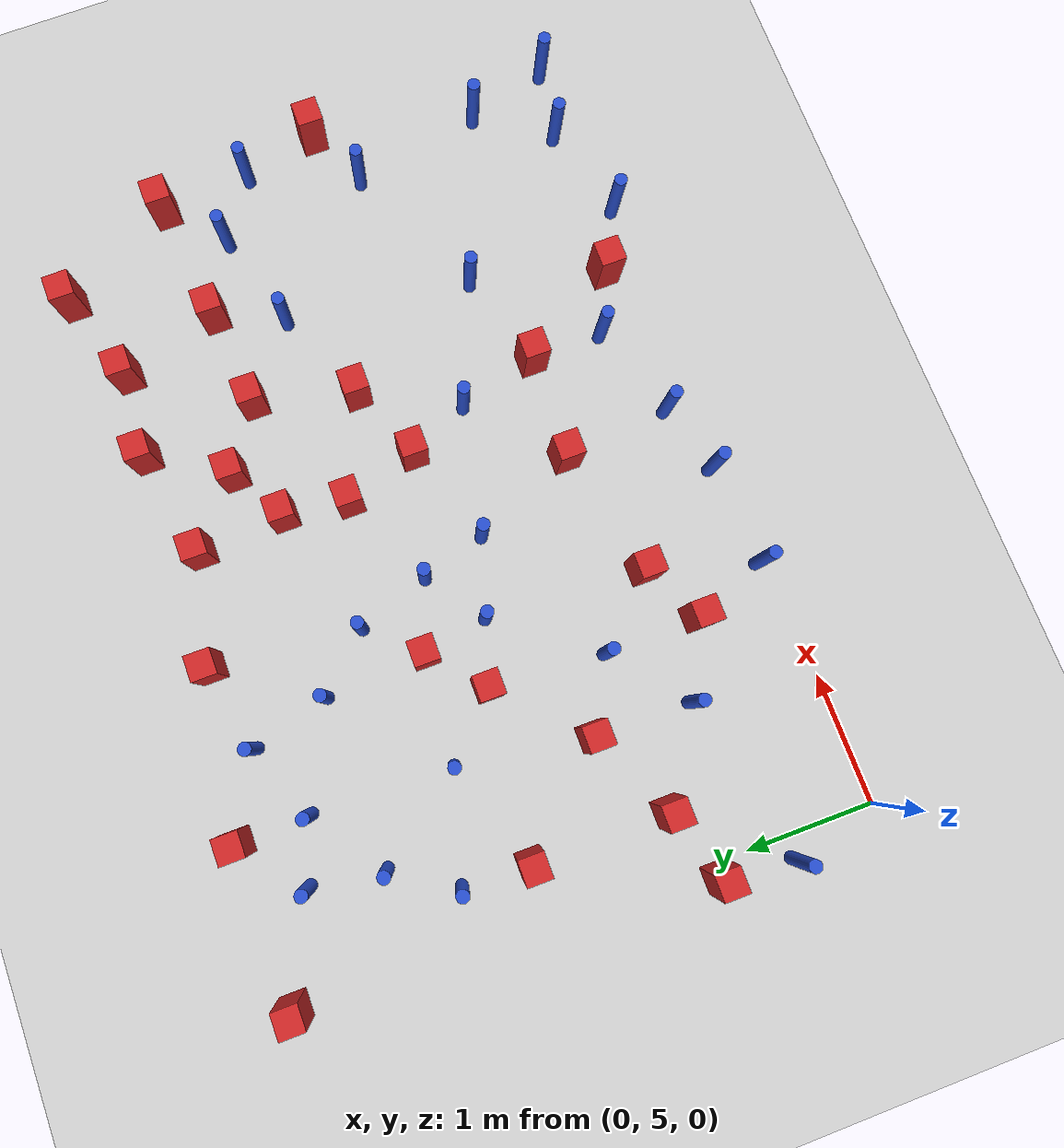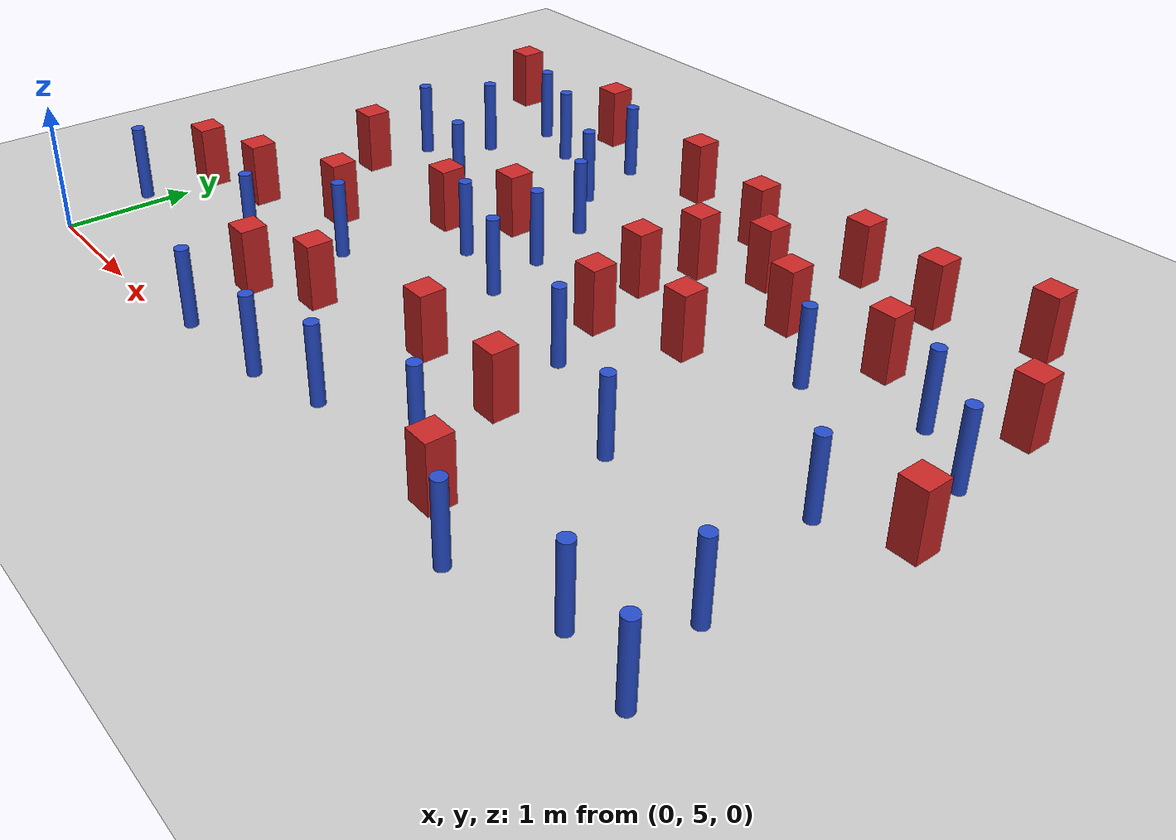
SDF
<sdf version="1.6">
 <world name="default">
  <model name="ground_plane">
   <static>1</static>
   <link name="link">
    <collision name="collision">
     <geometry><plane><normal>0 0 1</normal><size>100 100</size></plane></geometry>
     <surface><friction><ode><mu>100</mu><mu2>50</mu2></ode></friction></surface>
    </collision>
    <visual name="visual">
     <cast_shadows>0</cast_shadows>
     <geometry><plane><normal>0 0 1</normal><size>100 100</size></plane></geometry>
     <material>
      <ambient>1.0 1.0 1.0 1.0</ambient>
      <diffuse>0.8 0.8 0.8 1.0</diffuse>
      <specular>0.01 0.01 0.01 1.000000</specular>
     </material>
    </visual>
   </link>
  </model>
  <model name="pole_obstacle9">
   <static>true</static>
   <pose>2.75062196768 5.16766341242 2.88873142074e-08 -9.90536689859e-09 4.60219948989e-07 -1.20965994961e-07</pose>
   <link name="link">
    <pose>0 0 0.3 0 -0 0</pose>
    <inertial>
     <mass>1</mass>
     <inertia><ixx>0.145833</ixx><ixy>0</ixy><ixz>0</ixz><iyy>0.145833</iyy><iyz>0</iyz><izz>0.125</izz></inertia>
    </inertial>
    <collision name="collision">
     <geometry><cylinder><radius>0.05</radius><length>.6</length></cylinder></geometry>
    </collision>
    <visual name="visual">
     <geometry><cylinder><radius>0.05</radius><length>.6</length></cylinder></geometry>
     <material>
      <script><name>Gazebo/Blue</name><uri>file://media/materials/scripts/gazebo.material</uri></script>
     </material>
    </visual>
   </link>
  </model>
  <model name="pole_obstacle12">
   <static>true</static>
   <pose>6.35247733203 5.19964490263 2.88873142074e-08 -9.90536690842e-09 4.60219948965e-07 -1.20965994976e-07</pose>
   <link name="link">
    <pose>0 0 0.3 0 -0 0</pose>
    <inertial>
     <mass>1</mass>
     <inertia><ixx>0.145833</ixx><ixy>0</ixy><ixz>0</ixz><iyy>0.145833</iyy><iyz>0</iyz><izz>0.125</izz></inertia>
    </inertial>
    <collision name="collision">
     <geometry><cylinder><radius>0.05</radius><length>.6</length></cylinder></geometry>
    </collision>
    <visual name="visual">
     <geometry><cylinder><radius>0.05</radius><length>.6</length></cylinder></geometry>
     <material>
      <script><name>Gazebo/Blue</name><uri>file://media/materials/scripts/gazebo.material</uri></script>
     </material>
    </visual>
   </link>
  </model>
  <model name="pole_obstacle18">
   <static>true</static>
   <pose>0.877710790639 9.0844048404 2.88873142074e-08 -9.90536690779e-09 4.60219948967e-07 -1.20965994975e-07</pose>
   <link name="link">
    <pose>0 0 0.3 0 -0 0</pose>
    <inertial>
     <mass>1</mass>
     <inertia><ixx>0.145833</ixx><ixy>0</ixy><ixz>0</ixz><iyy>0.145833</iyy><iyz>0</iyz><izz>0.125</izz></inertia>
    </inertial>
    <collision name="collision">
     <geometry><cylinder><radius>0.05</radius><length>.6</length></cylinder></geometry>
    </collision>
    <visual name="visual">
     <geometry><cylinder><radius>0.05</radius><length>.6</length></cylinder></geometry>
     <material>
      <script><name>Gazebo/Blue</name><uri>file://media/materials/scripts/gazebo.material</uri></script>
     </material>
    </visual>
   </link>
  </model>
  <model name="pole_obstacle20">
   <static>true</static>
   <pose>0.496173714521 8.05047855768 2.88873142074e-08 -9.90536690577e-09 4.60219948971e-07 -1.20965994972e-07</pose>
   <link name="link">
    <pose>0 0 0.3 0 -0 0</pose>
    <inertial>
     <mass>1</mass>
     <inertia><ixx>0.145833</ixx><ixy>0</ixy><ixz>0</ixz><iyy>0.145833</iyy><iyz>0</iyz><izz>0.125</izz></inertia>
    </inertial>
    <collision name="collision">
     <geometry><cylinder><radius>0.05</radius><length>.6</length></cylinder></geometry>
    </collision>
    <visual name="visual">
     <geometry><cylinder><radius>0.05</radius><length>.6</length></cylinder></geometry>
     <material>
      <script><name>Gazebo/Blue</name><uri>file://media/materials/scripts/gazebo.material</uri></script>
     </material>
    </visual>
   </link>
  </model>
  <model name="pole_obstacle26">
   <static>true</static>
   <pose>2.86004743511 7.0189438137 2.88873142074e-08 -9.90536689859e-09 4.60219948989e-07 -1.20965994961e-07</pose>
   <link name="link">
    <pose>0 0 0.3 0 -0 0</pose>
    <inertial>
     <mass>1</mass>
     <inertia><ixx>0.145833</ixx><ixy>0</ixy><ixz>0</ixz><iyy>0.145833</iyy><iyz>0</iyz><izz>0.125</izz></inertia>
    </inertial>
    <collision name="collision">
     <geometry><cylinder><radius>0.05</radius><length>.6</length></cylinder></geometry>
    </collision>
    <visual name="visual">
     <geometry><cylinder><radius>0.05</radius><length>.6</length></cylinder></geometry>
     <material>
      <script><name>Gazebo/Blue</name><uri>file://media/materials/scripts/gazebo.material</uri></script>
     </material>
    </visual>
   </link>
  </model>
  <model name="pole_obstacle27">
   <static>true</static>
   <pose>3.30351959912 5.32341900675 2.88873142074e-08 -9.90536689859e-09 4.60219948989e-07 -1.20965994961e-07</pose>
   <link name="link">
    <pose>0 0 0.3 0 -0 0</pose>
    <inertial>
     <mass>1</mass>
     <inertia><ixx>0.145833</ixx><ixy>0</ixy><ixz>0</ixz><iyy>0.145833</iyy><iyz>0</iyz><izz>0.125</izz></inertia>
    </inertial>
    <collision name="collision">
     <geometry><cylinder><radius>0.05</radius><length>.6</length></cylinder></geometry>
    </collision>
    <visual name="visual">
     <geometry><cylinder><radius>0.05</radius><length>.6</length></cylinder></geometry>
     <material>
      <script><name>Gazebo/Blue</name><uri>file://media/materials/scripts/gazebo.material</uri></script>
     </material>
    </visual>
   </link>
  </model>
  <model name="pole_obstacle28">
   <static>true</static>
   <pose>5.78323723134 5.29497538898 2.88873142074e-08 -9.90536690842e-09 4.60219948965e-07 -1.20965994976e-07</pose>
   <link name="link">
    <pose>0 0 0.3 0 -0 0</pose>
    <inertial>
     <mass>1</mass>
     <inertia><ixx>0.145833</ixx><ixy>0</ixy><ixz>0</ixz><iyy>0.145833</iyy><iyz>0</iyz><izz>0.125</izz></inertia>
    </inertial>
    <collision name="collision">
     <geometry><cylinder><radius>0.05</radius><length>.6</length></cylinder></geometry>
    </collision>
    <visual name="visual">
     <geometry><cylinder><radius>0.05</radius><length>.6</length></cylinder></geometry>
     <material>
      <script><name>Gazebo/Blue</name><uri>file://media/materials/scripts/gazebo.material</uri></script>
     </material>
    </visual>
   </link>
  </model>
  <model name="square_post_obstacle20">
   <static>true</static>
   <pose>1.34375810138 9.47674669369 8.22691968438e-08 7.22125133819e-06 -7.54495500217e-07 2.29674213826e-05</pose>
   <link name="link">
    <pose>0 0 0.25 0 -0 0</pose>
    <inertial>
     <mass>100</mass>
     <inertia>
      <ixx>0.166667</ixx>
      <ixy>0</ixy>
      <ixz>0</ixz>
      <iyy>0.166667</iyy>
      <iyz>0</iyz>
      <izz>0.166667</izz>
     </inertia>
    </inertial>
    <collision name="collision"><geometry><box><size>.2 .2 .5</size></box></geometry></collision>
    <visual name="visual">
     <geometry><box><size>.2 .2 .5</size></box></geometry>
     <material>
      <script><name>Gazebo/Red</name><uri>file://media/materials/scripts/gazebo.material</uri></script>
     </material>
    </visual>
   </link>
  </model>
  <model name="pole_obstacle34">
   <static>true</static>
   <pose>2.1116650155 8.52730753208 2.88873142074e-08 -9.90536692318e-09 4.6021994893e-07 -1.20965994988e-07</pose>
   <link name="link">
    <pose>0 0 0.3 0 -0 0</pose>
    <inertial>
     <mass>1</mass>
     <inertia><ixx>0.145833</ixx><ixy>0</ixy><ixz>0</ixz><iyy>0.145833</iyy><iyz>0</iyz><izz>0.125</izz></inertia>
    </inertial>
    <collision name="collision">
     <geometry><cylinder><radius>0.05</radius><length>.6</length></cylinder></geometry>
    </collision>
    <visual name="visual">
     <geometry><cylinder><radius>0.05</radius><length>.6</length></cylinder></geometry>
     <material>
      <script><name>Gazebo/Blue</name><uri>file://media/materials/scripts/gazebo.material</uri></script>
     </material>
    </visual>
   </link>
  </model>
  <model name="square_post_obstacle29">
   <static>true</static>
   <pose>6.45664358526 7.16059631648 8.22691968438e-08 7.2212513382e-06 -7.54495500217e-07 2.29674213826e-05</pose>
   <link name="link">
    <pose>0 0 0.25 0 -0 0</pose>
    <inertial>
     <mass>100</mass>
     <inertia>
      <ixx>0.166667</ixx>
      <ixy>0</ixy>
      <ixz>0</ixz>
      <iyy>0.166667</iyy>
      <iyz>0</iyz>
      <izz>0.166667</izz>
     </inertia>
    </inertial>
    <collision name="collision"><geometry><box><size>.2 .2 .5</size></box></geometry></collision>
    <visual name="visual">
     <geometry><box><size>.2 .2 .5</size></box></geometry>
     <material>
      <script><name>Gazebo/Red</name><uri>file://media/materials/scripts/gazebo.material</uri></script>
     </material>
    </visual>
   </link>
  </model>
  <model name="pole_obstacle51">
   <static>true</static>
   <pose>2.25786399136 7.21373519391 2.88873142074e-08 -9.90536689859e-09 4.60219948989e-07 -1.20965994961e-07</pose>
   <link name="link">
    <pose>0 0 0.3 0 -0 0</pose>
    <inertial>
     <mass>1</mass>
     <inertia><ixx>0.145833</ixx><ixy>0</ixy><ixz>0</ixz><iyy>0.145833</iyy><iyz>0</iyz><izz>0.125</izz></inertia>
    </inertial>
    <collision name="collision">
     <geometry><cylinder><radius>0.05</radius><length>.6</length></cylinder></geometry>
    </collision>
    <visual name="visual">
     <geometry><cylinder><radius>0.05</radius><length>.6</length></cylinder></geometry>
     <material>
      <script><name>Gazebo/Blue</name><uri>file://media/materials/scripts/gazebo.material</uri></script>
     </material>
    </visual>
   </link>
  </model>
  <model name="pole_obstacle53">
   <static>true</static>
   <pose>1.94416588153 5.11041478608 2.88873142074e-08 -9.90536689852e-09 4.60219948989e-07 -1.2096599496e-07</pose>
   <link name="link">
    <pose>0 0 0.3 0 -0 0</pose>
    <inertial>
     <mass>1</mass>
     <inertia><ixx>0.145833</ixx><ixy>0</ixy><ixz>0</ixz><iyy>0.145833</iyy><iyz>0</iyz><izz>0.125</izz></inertia>
    </inertial>
    <collision name="collision">
     <geometry><cylinder><radius>0.05</radius><length>.6</length></cylinder></geometry>
    </collision>
    <visual name="visual">
     <geometry><cylinder><radius>0.05</radius><length>.6</length></cylinder></geometry>
     <material>
      <script><name>Gazebo/Blue</name><uri>file://media/materials/scripts/gazebo.material</uri></script>
     </material>
    </visual>
   </link>
  </model>
  <model name="square_post_obstacle45">
   <static>true</static>
   <pose>2.16737962664 7.73491258619 8.22691968438e-08 7.2212513382e-06 -7.54495500217e-07 2.29674213826e-05</pose>
   <link name="link">
    <pose>0 0 0.25 0 -0 0</pose>
    <inertial>
     <mass>100</mass>
     <inertia>
      <ixx>0.166667</ixx>
      <ixy>0</ixy>
      <ixz>0</ixz>
      <iyy>0.166667</iyy>
      <iyz>0</iyz>
      <izz>0.166667</izz>
     </inertia>
    </inertial>
    <collision name="collision"><geometry><box><size>.2 .2 .5</size></box></geometry></collision>
    <visual name="visual">
     <geometry><box><size>.2 .2 .5</size></box></geometry>
     <material>
      <script><name>Gazebo/Red</name><uri>file://media/materials/scripts/gazebo.material</uri></script>
     </material>
    </visual>
   </link>
  </model>
  <model name="pole_obstacle68">
   <static>true</static>
   <pose>3.87723527246 6.79368377061 2.88873142074e-08 -9.90536689859e-09 4.60219948989e-07 -1.20965994961e-07</pose>
   <link name="link">
    <pose>0 0 0.3 0 -0 0</pose>
    <inertial>
     <mass>1</mass>
     <inertia><ixx>0.145833</ixx><ixy>0</ixy><ixz>0</ixz><iyy>0.145833</iyy><iyz>0</iyz><izz>0.125</izz></inertia>
    </inertial>
    <collision name="collision">
     <geometry><cylinder><radius>0.05</radius><length>.6</length></cylinder></geometry>
    </collision>
    <visual name="visual">
     <geometry><cylinder><radius>0.05</radius><length>.6</length></cylinder></geometry>
     <material>
      <script><name>Gazebo/Blue</name><uri>file://media/materials/scripts/gazebo.material</uri></script>
     </material>
    </visual>
   </link>
  </model>
  <model name="square_post_obstacle53">
   <static>true</static>
   <pose>0.473466202747 6.4467933631 8.22691968438e-08 7.2212513382e-06 -7.54495500217e-07 2.29674213826e-05</pose>
   <link name="link">
    <pose>0 0 0.25 0 -0 0</pose>
    <inertial>
     <mass>100</mass>
     <inertia>
      <ixx>0.166667</ixx>
      <ixy>0</ixy>
      <ixz>0</ixz>
      <iyy>0.166667</iyy>
      <iyz>0</iyz>
      <izz>0.166667</izz>
     </inertia>
    </inertial>
    <collision name="collision"><geometry><box><size>.2 .2 .5</size></box></geometry></collision>
    <visual name="visual">
     <geometry><box><size>.2 .2 .5</size></box></geometry>
     <material>
      <script><name>Gazebo/Red</name><uri>file://media/materials/scripts/gazebo.material</uri></script>
     </material>
    </visual>
   </link>
  </model>
  <model name="square_post_obstacle56">
   <static>true</static>
   <pose>5.73746127303 9.41696358294 8.22691968438e-08 7.22125133819e-06 -7.54495500217e-07 2.29674213826e-05</pose>
   <link name="link">
    <pose>0 0 0.25 0 -0 0</pose>
    <inertial>
     <mass>100</mass>
     <inertia>
      <ixx>0.166667</ixx>
      <ixy>0</ixy>
      <ixz>0</ixz>
      <iyy>0.166667</iyy>
      <iyz>0</iyz>
      <izz>0.166667</izz>
     </inertia>
    </inertial>
    <collision name="collision"><geometry><box><size>.2 .2 .5</size></box></geometry></collision>
    <visual name="visual">
     <geometry><box><size>.2 .2 .5</size></box></geometry>
     <material>
      <script><name>Gazebo/Red</name><uri>file://media/materials/scripts/gazebo.material</uri></script>
     </material>
    </visual>
   </link>
  </model>
  <model name="square_post_obstacle60">
   <static>true</static>
   <pose>6.24111225473 8.49007462049 8.22691968438e-08 7.22125133819e-06 -7.54495500217e-07 2.29674213826e-05</pose>
   <link name="link">
    <pose>0 0 0.25 0 -0 0</pose>
    <inertial>
     <mass>100</mass>
     <inertia>
      <ixx>0.166667</ixx>
      <ixy>0</ixy>
      <ixz>0</ixz>
      <iyy>0.166667</iyy>
      <iyz>0</iyz>
      <izz>0.166667</izz>
     </inertia>
    </inertial>
    <collision name="collision"><geometry><box><size>.2 .2 .5</size></box></geometry></collision>
    <visual name="visual">
     <geometry><box><size>.2 .2 .5</size></box></geometry>
     <material>
      <script><name>Gazebo/Red</name><uri>file://media/materials/scripts/gazebo.material</uri></script>
     </material>
    </visual>
   </link>
  </model>
  <model name="square_post_obstacle69">
   <static>true</static>
   <pose>3.22426337157 6.19630124954 8.22691968438e-08 7.2212513382e-06 -7.54495500217e-07 2.29674213826e-05</pose>
   <link name="link">
    <pose>0 0 0.25 0 -0 0</pose>
    <inertial>
     <mass>100</mass>
     <inertia>
      <ixx>0.166667</ixx>
      <ixy>0</ixy>
      <ixz>0</ixz>
      <iyy>0.166667</iyy>
      <iyz>0</iyz>
      <izz>0.166667</izz>
     </inertia>
    </inertial>
    <collision name="collision"><geometry><box><size>.2 .2 .5</size></box></geometry></collision>
    <visual name="visual">
     <geometry><box><size>.2 .2 .5</size></box></geometry>
     <material>
      <script><name>Gazebo/Red</name><uri>file://media/materials/scripts/gazebo.material</uri></script>
     </material>
    </visual>
   </link>
  </model>
  <model name="square_post_obstacle70">
   <static>true</static>
   <pose>4.46667549537 8.32289699278 8.22691968438e-08 7.22125133819e-06 -7.54495500217e-07 2.29674213826e-05</pose>
   <link name="link">
    <pose>0 0 0.25 0 -0 0</pose>
    <inertial>
     <mass>100</mass>
     <inertia>
      <ixx>0.166667</ixx>
      <ixy>0</ixy>
      <ixz>0</ixz>
      <iyy>0.166667</iyy>
      <iyz>0</iyz>
      <izz>0.166667</izz>
     </inertia>
    </inertial>
    <collision name="collision"><geometry><box><size>.2 .2 .5</size></box></geometry></collision>
    <visual name="visual">
     <geometry><box><size>.2 .2 .5</size></box></geometry>
     <material>
      <script><name>Gazebo/Red</name><uri>file://media/materials/scripts/gazebo.material</uri></script>
     </material>
    </visual>
   </link>
  </model>
  <model name="square_post_obstacle73">
   <static>true</static>
   <pose>4.334957325 9.24432992103 8.22691968438e-08 7.22125133819e-06 -7.54495500217e-07 2.29674213826e-05</pose>
   <link name="link">
    <pose>0 0 0.25 0 -0 0</pose>
    <inertial>
     <mass>100</mass>
     <inertia>
      <ixx>0.166667</ixx>
      <ixy>0</ixy>
      <ixz>0</ixz>
      <iyy>0.166667</iyy>
      <iyz>0</iyz>
      <izz>0.166667</izz>
     </inertia>
    </inertial>
    <collision name="collision"><geometry><box><size>.2 .2 .5</size></box></geometry></collision>
    <visual name="visual">
     <geometry><box><size>.2 .2 .5</size></box></geometry>
     <material>
      <script><name>Gazebo/Red</name><uri>file://media/materials/scripts/gazebo.material</uri></script>
     </material>
    </visual>
   </link>
  </model>
  <model name="pole_obstacle89">
   <static>true</static>
   <pose>5.01578433842 7.86817746234 2.88873142074e-08 -9.90536690842e-09 4.60219948965e-07 -1.20965994976e-07</pose>
   <link name="link">
    <pose>0 0 0.3 0 -0 0</pose>
    <inertial>
     <mass>1</mass>
     <inertia><ixx>0.145833</ixx><ixy>0</ixy><ixz>0</ixz><iyy>0.145833</iyy><iyz>0</iyz><izz>0.125</izz></inertia>
    </inertial>
    <collision name="collision">
     <geometry><cylinder><radius>0.05</radius><length>.6</length></cylinder></geometry>
    </collision>
    <visual name="visual">
     <geometry><cylinder><radius>0.05</radius><length>.6</length></cylinder></geometry>
     <material>
      <script><name>Gazebo/Blue</name><uri>file://media/materials/scripts/gazebo.material</uri></script>
     </material>
    </visual>
   </link>
  </model>
  <model name="square_post_obstacle80">
   <static>true</static>
   <pose>4.54353750538 5.34588782274 8.22691968438e-08 7.2212513382e-06 -7.54495500217e-07 2.29674213826e-05</pose>
   <link name="link">
    <pose>0 0 0.25 0 -0 0</pose>
    <inertial>
     <mass>100</mass>
     <inertia>
      <ixx>0.166667</ixx>
      <ixy>0</ixy>
      <ixz>0</ixz>
      <iyy>0.166667</iyy>
      <iyz>0</iyz>
      <izz>0.166667</izz>
     </inertia>
    </inertial>
    <collision name="collision"><geometry><box><size>.2 .2 .5</size></box></geometry></collision>
    <visual name="visual">
     <geometry><box><size>.2 .2 .5</size></box></geometry>
     <material>
      <script><name>Gazebo/Red</name><uri>file://media/materials/scripts/gazebo.material</uri></script>
     </material>
    </visual>
   </link>
  </model>
  <model name="pole_obstacle98">
   <static>true</static>
   <pose>4.05767678159 5.5701924785 2.88873142074e-08 -9.90536690842e-09 4.60219948965e-07 -1.20965994976e-07</pose>
   <link name="link">
    <pose>0 0 0.3 0 -0 0</pose>
    <inertial>
     <mass>1</mass>
     <inertia><ixx>0.145833</ixx><ixy>0</ixy><ixz>0</ixz><iyy>0.145833</iyy><iyz>0</iyz><izz>0.125</izz></inertia>
    </inertial>
    <collision name="collision">
     <geometry><cylinder><radius>0.05</radius><length>.6</length></cylinder></geometry>
    </collision>
    <visual name="visual">
     <geometry><cylinder><radius>0.05</radius><length>.6</length></cylinder></geometry>
     <material>
      <script><name>Gazebo/Blue</name><uri>file://media/materials/scripts/gazebo.material</uri></script>
     </material>
    </visual>
   </link>
  </model>
  <model name="square_post_obstacle98">
   <static>true</static>
   <pose>2.19701515265 5.95815770522 8.22691968438e-08 7.2212513382e-06 -7.54495500217e-07 2.29674213826e-05</pose>
   <link name="link">
    <pose>0 0 0.25 0 -0 0</pose>
    <inertial>
     <mass>100</mass>
     <inertia>
      <ixx>0.166667</ixx>
      <ixy>0</ixy>
      <ixz>0</ixz>
      <iyy>0.166667</iyy>
      <iyz>0</iyz>
      <izz>0.166667</izz>
     </inertia>
    </inertial>
    <collision name="collision"><geometry><box><size>.2 .2 .5</size></box></geometry></collision>
    <visual name="visual">
     <geometry><box><size>.2 .2 .5</size></box></geometry>
     <material>
      <script><name>Gazebo/Red</name><uri>file://media/materials/scripts/gazebo.material</uri></script>
     </material>
    </visual>
   </link>
  </model>
  <model name="square_post_obstacle99">
   <static>true</static>
   <pose>-0.0827062782005 6.27611185074 8.22691968438e-08 7.2212513382e-06 -7.54495500217e-07 2.29674213826e-05</pose>
   <link name="link">
    <pose>0 0 0.25 0 -0 0</pose>
    <inertial>
     <mass>100</mass>
     <inertia>
      <ixx>0.166667</ixx>
      <ixy>0</ixy>
      <ixz>0</ixz>
      <iyy>0.166667</iyy>
      <iyz>0</iyz>
      <izz>0.166667</izz>
     </inertia>
    </inertial>
    <collision name="collision"><geometry><box><size>.2 .2 .5</size></box></geometry></collision>
    <visual name="visual">
     <geometry><box><size>.2 .2 .5</size></box></geometry>
     <material>
      <script><name>Gazebo/Red</name><uri>file://media/materials/scripts/gazebo.material</uri></script>
     </material>
    </visual>
   </link>
  </model>
  <model name="pole_obstacle104">
   <static>true</static>
   <pose>-0.150329997011 5.71745533665 2.88873142074e-08 -9.90536689816e-09 4.6021994899e-07 -1.20965994961e-07</pose>
   <link name="link">
    <pose>0 0 0.3 0 -0 0</pose>
    <inertial>
     <mass>1</mass>
     <inertia><ixx>0.145833</ixx><ixy>0</ixy><ixz>0</ixz><iyy>0.145833</iyy><iyz>0</iyz><izz>0.125</izz></inertia>
    </inertial>
    <collision name="collision">
     <geometry><cylinder><radius>0.05</radius><length>.6</length></cylinder></geometry>
    </collision>
    <visual name="visual">
     <geometry><cylinder><radius>0.05</radius><length>.6</length></cylinder></geometry>
     <material>
      <script><name>Gazebo/Blue</name><uri>file://media/materials/scripts/gazebo.material</uri></script>
     </material>
    </visual>
   </link>
  </model>
  <model name="pole_obstacle107">
   <static>true</static>
   <pose>4.82248454872 6.38759710681 2.88873142074e-08 -9.90536690842e-09 4.60219948965e-07 -1.20965994976e-07</pose>
   <link name="link">
    <pose>0 0 0.3 0 -0 0</pose>
    <inertial>
     <mass>1</mass>
     <inertia><ixx>0.145833</ixx><ixy>0</ixy><ixz>0</ixz><iyy>0.145833</iyy><iyz>0</iyz><izz>0.125</izz></inertia>
    </inertial>
    <collision name="collision">
     <geometry><cylinder><radius>0.05</radius><length>.6</length></cylinder></geometry>
    </collision>
    <visual name="visual">
     <geometry><cylinder><radius>0.05</radius><length>.6</length></cylinder></geometry>
     <material>
      <script><name>Gazebo/Blue</name><uri>file://media/materials/scripts/gazebo.material</uri></script>
     </material>
    </visual>
   </link>
  </model>
  <model name="pole_obstacle112">
   <static>true</static>
   <pose>6.29345720539 7.76990498734 2.88873142074e-08 -9.90536690842e-09 4.60219948965e-07 -1.20965994976e-07</pose>
   <link name="link">
    <pose>0 0 0.3 0 -0 0</pose>
    <inertial>
     <mass>1</mass>
     <inertia><ixx>0.145833</ixx><ixy>0</ixy><ixz>0</ixz><iyy>0.145833</iyy><iyz>0</iyz><izz>0.125</izz></inertia>
    </inertial>
    <collision name="collision">
     <geometry><cylinder><radius>0.05</radius><length>.6</length></cylinder></geometry>
    </collision>
    <visual name="visual">
     <geometry><cylinder><radius>0.05</radius><length>.6</length></cylinder></geometry>
     <material>
      <script><name>Gazebo/Blue</name><uri>file://media/materials/scripts/gazebo.material</uri></script>
     </material>
    </visual>
   </link>
  </model>
  <model name="square_post_obstacle114">
   <static>true</static>
   <pose>3.47491965412 9.07347290623 8.22691968438e-08 7.22125133819e-06 -7.54495500217e-07 2.29674213826e-05</pose>
   <link name="link">
    <pose>0 0 0.25 0 -0 0</pose>
    <inertial>
     <mass>100</mass>
     <inertia>
      <ixx>0.166667</ixx>
      <ixy>0</ixy>
      <ixz>0</ixz>
      <iyy>0.166667</iyy>
      <iyz>0</iyz>
      <izz>0.166667</izz>
     </inertia>
    </inertial>
    <collision name="collision"><geometry><box><size>.2 .2 .5</size></box></geometry></collision>
    <visual name="visual">
     <geometry><box><size>.2 .2 .5</size></box></geometry>
     <material>
      <script><name>Gazebo/Red</name><uri>file://media/materials/scripts/gazebo.material</uri></script>
     </material>
    </visual>
   </link>
  </model>
  <model name="square_post_obstacle115">
   <static>true</static>
   <pose>0.128100175111 9.4455944228 8.22691968438e-08 7.22125133819e-06 -7.54495500217e-07 2.29674213826e-05</pose>
   <link name="link">
    <pose>0 0 0.25 0 -0 0</pose>
    <inertial>
     <mass>100</mass>
     <inertia>
      <ixx>0.166667</ixx>
      <ixy>0</ixy>
      <ixz>0</ixz>
      <iyy>0.166667</iyy>
      <iyz>0</iyz>
      <izz>0.166667</izz>
     </inertia>
    </inertial>
    <collision name="collision"><geometry><box><size>.2 .2 .5</size></box></geometry></collision>
    <visual name="visual">
     <geometry><box><size>.2 .2 .5</size></box></geometry>
     <material>
      <script><name>Gazebo/Red</name><uri>file://media/materials/scripts/gazebo.material</uri></script>
     </material>
    </visual>
   </link>
  </model>
  <model name="pole_obstacle117">
   <static>true</static>
   <pose>5.02110356091 5.08092116571 2.88873142074e-08 -9.90536690842e-09 4.60219948965e-07 -1.20965994976e-07</pose>
   <link name="link">
    <pose>0 0 0.3 0 -0 0</pose>
    <inertial>
     <mass>1</mass>
     <inertia><ixx>0.145833</ixx><ixy>0</ixy><ixz>0</ixz><iyy>0.145833</iyy><iyz>0</iyz><izz>0.125</izz></inertia>
    </inertial>
    <collision name="collision">
     <geometry><cylinder><radius>0.05</radius><length>.6</length></cylinder></geometry>
    </collision>
    <visual name="visual">
     <geometry><cylinder><radius>0.05</radius><length>.6</length></cylinder></geometry>
     <material>
      <script><name>Gazebo/Blue</name><uri>file://media/materials/scripts/gazebo.material</uri></script>
     </material>
    </visual>
   </link>
  </model>
  <model name="square_post_obstacle119">
   <static>true</static>
   <pose>1.77292378903 7.37804251374 8.22691968438e-08 7.2212513382e-06 -7.54495500217e-07 2.29674213826e-05</pose>
   <link name="link">
    <pose>0 0 0.25 0 -0 0</pose>
    <inertial>
     <mass>100</mass>
     <inertia>
      <ixx>0.166667</ixx>
      <ixy>0</ixy>
      <ixz>0</ixz>
      <iyy>0.166667</iyy>
      <iyz>0</iyz>
      <izz>0.166667</izz>
     </inertia>
    </inertial>
    <collision name="collision"><geometry><box><size>.2 .2 .5</size></box></geometry></collision>
    <visual name="visual">
     <geometry><box><size>.2 .2 .5</size></box></geometry>
     <material>
      <script><name>Gazebo/Red</name><uri>file://media/materials/scripts/gazebo.material</uri></script>
     </material>
    </visual>
   </link>
  </model>
  <model name="pole_obstacle122">
   <static>true</static>
   <pose>1.35463450651 8.91184611083 2.88873142074e-08 -9.90536690474e-09 4.60219948974e-07 -1.2096599497e-07</pose>
   <link name="link">
    <pose>0 0 0.3 0 -0 0</pose>
    <inertial>
     <mass>1</mass>
     <inertia><ixx>0.145833</ixx><ixy>0</ixy><ixz>0</ixz><iyy>0.145833</iyy><iyz>0</iyz><izz>0.125</izz></inertia>
    </inertial>
    <collision name="collision">
     <geometry><cylinder><radius>0.05</radius><length>.6</length></cylinder></geometry>
    </collision>
    <visual name="visual">
     <geometry><cylinder><radius>0.05</radius><length>.6</length></cylinder></geometry>
     <material>
      <script><name>Gazebo/Blue</name><uri>file://media/materials/scripts/gazebo.material</uri></script>
     </material>
    </visual>
   </link>
  </model>
  <model name="square_post_obstacle122">
   <static>true</static>
   <pose>2.61800204742 9.27279329622 8.22691968438e-08 7.22125133819e-06 -7.54495500217e-07 2.29674213826e-05</pose>
   <link name="link">
    <pose>0 0 0.25 0 -0 0</pose>
    <inertial>
     <mass>100</mass>
     <inertia>
      <ixx>0.166667</ixx>
      <ixy>0</ixy>
      <ixz>0</ixz>
      <iyy>0.166667</iyy>
      <iyz>0</iyz>
      <izz>0.166667</izz>
     </inertia>
    </inertial>
    <collision name="collision"><geometry><box><size>.2 .2 .5</size></box></geometry></collision>
    <visual name="visual">
     <geometry><box><size>.2 .2 .5</size></box></geometry>
     <material>
      <script><name>Gazebo/Red</name><uri>file://media/materials/scripts/gazebo.material</uri></script>
     </material>
    </visual>
   </link>
  </model>
  <model name="square_post_obstacle139">
   <static>true</static>
   <pose>1.16839432635 6.77086964397 8.22691968438e-08 7.2212513382e-06 -7.54495500217e-07 2.29674213826e-05</pose>
   <link name="link">
    <pose>0 0 0.25 0 -0 0</pose>
    <inertial>
     <mass>100</mass>
     <inertia>
      <ixx>0.166667</ixx>
      <ixy>0</ixy>
      <ixz>0</ixz>
      <iyy>0.166667</iyy>
      <iyz>0</iyz>
      <izz>0.166667</izz>
     </inertia>
    </inertial>
    <collision name="collision"><geometry><box><size>.2 .2 .5</size></box></geometry></collision>
    <visual name="visual">
     <geometry><box><size>.2 .2 .5</size></box></geometry>
     <material>
      <script><name>Gazebo/Red</name><uri>file://media/materials/scripts/gazebo.material</uri></script>
     </material>
    </visual>
   </link>
  </model>
  <model name="pole_obstacle148">
   <static>true</static>
   <pose>0.797912230044 8.51543927075 2.88873142074e-08 -9.90536690779e-09 4.60219948967e-07 -1.20965994975e-07</pose>
   <link name="link">
    <pose>0 0 0.3 0 -0 0</pose>
    <inertial>
     <mass>1</mass>
     <inertia><ixx>0.145833</ixx><ixy>0</ixy><ixz>0</ixz><iyy>0.145833</iyy><iyz>0</iyz><izz>0.125</izz></inertia>
    </inertial>
    <collision name="collision">
     <geometry><cylinder><radius>0.05</radius><length>.6</length></cylinder></geometry>
    </collision>
    <visual name="visual">
     <geometry><cylinder><radius>0.05</radius><length>.6</length></cylinder></geometry>
     <material>
      <script><name>Gazebo/Blue</name><uri>file://media/materials/scripts/gazebo.material</uri></script>
     </material>
    </visual>
   </link>
  </model>
  <model name="square_post_obstacle143">
   <static>true</static>
   <pose>4.25790652955 7.54313307473 8.22691968438e-08 7.2212513382e-06 -7.54495500217e-07 2.29674213826e-05</pose>
   <link name="link">
    <pose>0 0 0.25 0 -0 0</pose>
    <inertial>
     <mass>100</mass>
     <inertia>
      <ixx>0.166667</ixx>
      <ixy>0</ixy>
      <ixz>0</ixz>
      <iyy>0.166667</iyy>
      <iyz>0</iyz>
      <izz>0.166667</izz>
     </inertia>
    </inertial>
    <collision name="collision"><geometry><box><size>.2 .2 .5</size></box></geometry></collision>
    <visual name="visual">
     <geometry><box><size>.2 .2 .5</size></box></geometry>
     <material>
      <script><name>Gazebo/Red</name><uri>file://media/materials/scripts/gazebo.material</uri></script>
     </material>
    </visual>
   </link>
  </model>
  <model name="square_post_obstacle144">
   <static>true</static>
   <pose>3.52936976219 8.3875636019 8.22691968438e-08 7.22125133819e-06 -7.54495500217e-07 2.29674213826e-05</pose>
   <link name="link">
    <pose>0 0 0.25 0 -0 0</pose>
    <inertial>
     <mass>100</mass>
     <inertia>
      <ixx>0.166667</ixx>
      <ixy>0</ixy>
      <ixz>0</ixz>
      <iyy>0.166667</iyy>
      <iyz>0</iyz>
      <izz>0.166667</izz>
     </inertia>
    </inertial>
    <collision name="collision"><geometry><box><size>.2 .2 .5</size></box></geometry></collision>
    <visual name="visual">
     <geometry><box><size>.2 .2 .5</size></box></geometry>
     <material>
      <script><name>Gazebo/Red</name><uri>file://media/materials/scripts/gazebo.material</uri></script>
     </material>
    </visual>
   </link>
  </model>
  <model name="pole_obstacle154">
   <static>true</static>
   <pose>6.16573415316 5.86373000201 2.88873142074e-08 -9.90536690842e-09 4.60219948965e-07 -1.20965994976e-07</pose>
   <link name="link">
    <pose>0 0 0.3 0 -0 0</pose>
    <inertial>
     <mass>1</mass>
     <inertia><ixx>0.145833</ixx><ixy>0</ixy><ixz>0</ixz><iyy>0.145833</iyy><iyz>0</iyz><izz>0.125</izz></inertia>
    </inertial>
    <collision name="collision">
     <geometry><cylinder><radius>0.05</radius><length>.6</length></cylinder></geometry>
    </collision>
    <visual name="visual">
     <geometry><cylinder><radius>0.05</radius><length>.6</length></cylinder></geometry>
     <material>
      <script><name>Gazebo/Blue</name><uri>file://media/materials/scripts/gazebo.material</uri></script>
     </material>
    </visual>
   </link>
  </model>
  <model name="pole_obstacle155">
   <static>true</static>
   <pose>2.70268230434 7.53551123377 2.88873142074e-08 -9.90536689859e-09 4.60219948989e-07 -1.20965994961e-07</pose>
   <link name="link">
    <pose>0 0 0.3 0 -0 0</pose>
    <inertial>
     <mass>1</mass>
     <inertia><ixx>0.145833</ixx><ixy>0</ixy><ixz>0</ixz><iyy>0.145833</iyy><iyz>0</iyz><izz>0.125</izz></inertia>
    </inertial>
    <collision name="collision">
     <geometry><cylinder><radius>0.05</radius><length>.6</length></cylinder></geometry>
    </collision>
    <visual name="visual">
     <geometry><cylinder><radius>0.05</radius><length>.6</length></cylinder></geometry>
     <material>
      <script><name>Gazebo/Blue</name><uri>file://media/materials/scripts/gazebo.material</uri></script>
     </material>
    </visual>
   </link>
  </model>
  <model name="pole_obstacle157">
   <static>true</static>
   <pose>1.31752944168 7.80853226036 2.88873142074e-08 -9.90536689852e-09 4.60219948989e-07 -1.2096599496e-07</pose>
   <link name="link">
    <pose>0 0 0.3 0 -0 0</pose>
    <inertial>
     <mass>1</mass>
     <inertia><ixx>0.145833</ixx><ixy>0</ixy><ixz>0</ixz><iyy>0.145833</iyy><iyz>0</iyz><izz>0.125</izz></inertia>
    </inertial>
    <collision name="collision">
     <geometry><cylinder><radius>0.05</radius><length>.6</length></cylinder></geometry>
    </collision>
    <visual name="visual">
     <geometry><cylinder><radius>0.05</radius><length>.6</length></cylinder></geometry>
     <material>
      <script><name>Gazebo/Blue</name><uri>file://media/materials/scripts/gazebo.material</uri></script>
     </material>
    </visual>
   </link>
  </model>
  <model name="square_post_obstacle153">
   <static>true</static>
   <pose>3.46293724026 7.87782422878 8.22691968438e-08 7.2212513382e-06 -7.54495500217e-07 2.29674213826e-05</pose>
   <link name="link">
    <pose>0 0 0.25 0 -0 0</pose>
    <inertial>
     <mass>100</mass>
     <inertia>
      <ixx>0.166667</ixx>
      <ixy>0</ixy>
      <ixz>0</ixz>
      <iyy>0.166667</iyy>
      <iyz>0</iyz>
      <izz>0.166667</izz>
     </inertia>
    </inertial>
    <collision name="collision"><geometry><box><size>.2 .2 .5</size></box></geometry></collision>
    <visual name="visual">
     <geometry><box><size>.2 .2 .5</size></box></geometry>
     <material>
      <script><name>Gazebo/Red</name><uri>file://media/materials/scripts/gazebo.material</uri></script>
     </material>
    </visual>
   </link>
  </model>
  <model name="square_post_obstacle160">
   <static>true</static>
   <pose>5.24924548109 8.39211430863 8.22691968438e-08 7.22125133819e-06 -7.54495500217e-07 2.29674213826e-05</pose>
   <link name="link">
    <pose>0 0 0.25 0 -0 0</pose>
    <inertial>
     <mass>100</mass>
     <inertia>
      <ixx>0.166667</ixx>
      <ixy>0</ixy>
      <ixz>0</ixz>
      <iyy>0.166667</iyy>
      <iyz>0</iyz>
      <izz>0.166667</izz>
     </inertia>
    </inertial>
    <collision name="collision"><geometry><box><size>.2 .2 .5</size></box></geometry></collision>
    <visual name="visual">
     <geometry><box><size>.2 .2 .5</size></box></geometry>
     <material>
      <script><name>Gazebo/Red</name><uri>file://media/materials/scripts/gazebo.material</uri></script>
     </material>
    </visual>
   </link>
  </model>
  <model name="square_post_obstacle165">
   <static>true</static>
   <pose>4.05143530558 6.15773969588 8.22691968438e-08 7.2212513382e-06 -7.54495500217e-07 2.29674213826e-05</pose>
   <link name="link">
    <pose>0 0 0.25 0 -0 0</pose>
    <inertial>
     <mass>100</mass>
     <inertia>
      <ixx>0.166667</ixx>
      <ixy>0</ixy>
      <ixz>0</ixz>
      <iyy>0.166667</iyy>
      <iyz>0</iyz>
      <izz>0.166667</izz>
     </inertia>
    </inertial>
    <collision name="collision"><geometry><box><size>.2 .2 .5</size></box></geometry></collision>
    <visual name="visual">
     <geometry><box><size>.2 .2 .5</size></box></geometry>
     <material>
      <script><name>Gazebo/Red</name><uri>file://media/materials/scripts/gazebo.material</uri></script>
     </material>
    </visual>
   </link>
  </model>
  <model name="square_post_obstacle166">
   <static>true</static>
   <pose>3.9643210174 8.64688591722 8.22691968438e-08 7.22125133819e-06 -7.54495500217e-07 2.29674213826e-05</pose>
   <link name="link">
    <pose>0 0 0.25 0 -0 0</pose>
    <inertial>
     <mass>100</mass>
     <inertia>
      <ixx>0.166667</ixx>
      <ixy>0</ixy>
      <ixz>0</ixz>
      <iyy>0.166667</iyy>
      <iyz>0</iyz>
      <izz>0.166667</izz>
     </inertia>
    </inertial>
    <collision name="collision"><geometry><box><size>.2 .2 .5</size></box></geometry></collision>
    <visual name="visual">
     <geometry><box><size>.2 .2 .5</size></box></geometry>
     <material>
      <script><name>Gazebo/Red</name><uri>file://media/materials/scripts/gazebo.material</uri></script>
     </material>
    </visual>
   </link>
  </model>
  <model name="pole_obstacle176">
   <static>true</static>
   <pose>5.95853852557 6.91794042659 2.88873142074e-08 -9.90536690842e-09 4.60219948965e-07 -1.20965994976e-07</pose>
   <link name="link">
    <pose>0 0 0.3 0 -0 0</pose>
    <inertial>
     <mass>1</mass>
     <inertia><ixx>0.145833</ixx><ixy>0</ixy><ixz>0</ixz><iyy>0.145833</iyy><iyz>0</iyz><izz>0.125</izz></inertia>
    </inertial>
    <collision name="collision">
     <geometry><cylinder><radius>0.05</radius><length>.6</length></cylinder></geometry>
    </collision>
    <visual name="visual">
     <geometry><cylinder><radius>0.05</radius><length>.6</length></cylinder></geometry>
     <material>
      <script><name>Gazebo/Blue</name><uri>file://media/materials/scripts/gazebo.material</uri></script>
     </material>
    </visual>
   </link>
  </model>
  <model name="pole_obstacle178">
   <static>true</static>
   <pose>1.70257279187 6.46184558009 2.88873142074e-08 -9.90536689852e-09 4.60219948989e-07 -1.2096599496e-07</pose>
   <link name="link">
    <pose>0 0 0.3 0 -0 0</pose>
    <inertial>
     <mass>1</mass>
     <inertia><ixx>0.145833</ixx><ixy>0</ixy><ixz>0</ixz><iyy>0.145833</iyy><iyz>0</iyz><izz>0.125</izz></inertia>
    </inertial>
    <collision name="collision">
     <geometry><cylinder><radius>0.05</radius><length>.6</length></cylinder></geometry>
    </collision>
    <visual name="visual">
     <geometry><cylinder><radius>0.05</radius><length>.6</length></cylinder></geometry>
     <material>
      <script><name>Gazebo/Blue</name><uri>file://media/materials/scripts/gazebo.material</uri></script>
     </material>
    </visual>
   </link>
  </model>
  <model name="square_post_obstacle175">
   <static>true</static>
   <pose>3.65053390365 7.29399217935 8.22691968438e-08 7.2212513382e-06 -7.54495500217e-07 2.29674213826e-05</pose>
   <link name="link">
    <pose>0 0 0.25 0 -0 0</pose>
    <inertial>
     <mass>100</mass>
     <inertia>
      <ixx>0.166667</ixx>
      <ixy>0</ixy>
      <ixz>0</ixz>
      <iyy>0.166667</iyy>
      <iyz>0</iyz>
      <izz>0.166667</izz>
     </inertia>
    </inertial>
    <collision name="collision"><geometry><box><size>.2 .2 .5</size></box></geometry></collision>
    <visual name="visual">
     <geometry><box><size>.2 .2 .5</size></box></geometry>
     <material>
      <script><name>Gazebo/Red</name><uri>file://media/materials/scripts/gazebo.material</uri></script>
     </material>
    </visual>
   </link>
  </model>
  <model name="square_post_obstacle180">
   <static>true</static>
   <pose>5.01133504313 9.18246452268 8.22691968438e-08 7.22125133819e-06 -7.54495500217e-07 2.29674213826e-05</pose>
   <link name="link">
    <pose>0 0 0.25 0 -0 0</pose>
    <inertial>
     <mass>100</mass>
     <inertia>
      <ixx>0.166667</ixx>
      <ixy>0</ixy>
      <ixz>0</ixz>
      <iyy>0.166667</iyy>
      <iyz>0</iyz>
      <izz>0.166667</izz>
     </inertia>
    </inertial>
    <collision name="collision"><geometry><box><size>.2 .2 .5</size></box></geometry></collision>
    <visual name="visual">
     <geometry><box><size>.2 .2 .5</size></box></geometry>
     <material>
      <script><name>Gazebo/Red</name><uri>file://media/materials/scripts/gazebo.material</uri></script>
     </material>
    </visual>
   </link>
  </model>
  <model name="pole_obstacle186">
   <static>true</static>
   <pose>1.1479110017 5.99537958338 2.88873142074e-08 -9.90536689852e-09 4.60219948989e-07 -1.2096599496e-07</pose>
   <link name="link">
    <pose>0 0 0.3 0 -0 0</pose>
    <inertial>
     <mass>1</mass>
     <inertia><ixx>0.145833</ixx><ixy>0</ixy><ixz>0</ixz><iyy>0.145833</iyy><iyz>0</iyz><izz>0.125</izz></inertia>
    </inertial>
    <collision name="collision">
     <geometry><cylinder><radius>0.05</radius><length>.6</length></cylinder></geometry>
    </collision>
    <visual name="visual">
     <geometry><cylinder><radius>0.05</radius><length>.6</length></cylinder></geometry>
     <material>
      <script><name>Gazebo/Blue</name><uri>file://media/materials/scripts/gazebo.material</uri></script>
     </material>
    </visual>
   </link>
  </model>
  <model name="square_post_obstacle206">
   <static>true</static>
   <pose>1.7238845532 5.70371308865 8.22691968438e-08 7.2212513382e-06 -7.54495500217e-07 2.29674213826e-05</pose>
   <link name="link">
    <pose>0 0 0.25 0 -0 0</pose>
    <inertial>
     <mass>100</mass>
     <inertia>
      <ixx>0.166667</ixx>
      <ixy>0</ixy>
      <ixz>0</ixz>
      <iyy>0.166667</iyy>
      <iyz>0</iyz>
      <izz>0.166667</izz>
     </inertia>
    </inertial>
    <collision name="collision"><geometry><box><size>.2 .2 .5</size></box></geometry></collision>
    <visual name="visual">
     <geometry><box><size>.2 .2 .5</size></box></geometry>
     <material>
      <script><name>Gazebo/Red</name><uri>file://media/materials/scripts/gazebo.material</uri></script>
     </material>
    </visual>
   </link>
  </model>
  <model name="pole_obstacle193">
   <static>true</static>
   <pose>5.81061823096 8.0980996855 2.88873142074e-08 -9.9053668967e-09 4.60219948993e-07 -1.20965994957e-07</pose>
   <link name="link">
    <pose>0 0 0.3 0 -0 0</pose>
    <inertial>
     <mass>1</mass>
     <inertia><ixx>0.145833</ixx><ixy>0</ixy><ixz>0</ixz><iyy>0.145833</iyy><iyz>0</iyz><izz>0.125</izz></inertia>
    </inertial>
    <collision name="collision">
     <geometry><cylinder><radius>0.05</radius><length>.6</length></cylinder></geometry>
    </collision>
    <visual name="visual">
     <geometry><cylinder><radius>0.05</radius><length>.6</length></cylinder></geometry>
     <material>
      <script><name>Gazebo/Blue</name><uri>file://media/materials/scripts/gazebo.material</uri></script>
     </material>
    </visual>
   </link>
  </model>
  <model name="pole_obstacle198">
   <static>true</static>
   <pose>2.50508392671 8.1124121486 2.88873142074e-08 -9.90536692318e-09 4.6021994893e-07 -1.20965994988e-07</pose>
   <link name="link">
    <pose>0 0 0.3 0 -0 0</pose>
    <inertial>
     <mass>1</mass>
     <inertia><ixx>0.145833</ixx><ixy>0</ixy><ixz>0</ixz><iyy>0.145833</iyy><iyz>0</iyz><izz>0.125</izz></inertia>
    </inertial>
    <collision name="collision">
     <geometry><cylinder><radius>0.05</radius><length>.6</length></cylinder></geometry>
    </collision>
    <visual name="visual">
     <geometry><cylinder><radius>0.05</radius><length>.6</length></cylinder></geometry>
     <material>
      <script><name>Gazebo/Blue</name><uri>file://media/materials/scripts/gazebo.material</uri></script>
     </material>
    </visual>
   </link>
  </model>
  <model name="pole_obstacle208">
   <static>true</static>
   <pose>1.94211566066 9.14021064398 2.88873142074e-08 -9.90536690474e-09 4.60219948974e-07 -1.2096599497e-07</pose>
   <link name="link">
    <pose>0 0 0.3 0 -0 0</pose>
    <inertial>
     <mass>1</mass>
     <inertia><ixx>0.145833</ixx><ixy>0</ixy><ixz>0</ixz><iyy>0.145833</iyy><iyz>0</iyz><izz>0.125</izz></inertia>
    </inertial>
    <collision name="collision">
     <geometry><cylinder><radius>0.05</radius><length>.6</length></cylinder></geometry>
    </collision>
    <visual name="visual">
     <geometry><cylinder><radius>0.05</radius><length>.6</length></cylinder></geometry>
     <material>
      <script><name>Gazebo/Blue</name><uri>file://media/materials/scripts/gazebo.material</uri></script>
     </material>
    </visual>
   </link>
  </model>
  <model name="square_post_obstacle213">
   <static>true</static>
   <pose>0.477188430003 7.51941611262 8.22691968438e-08 7.2212513382e-06 -7.54495500217e-07 2.29674213826e-05</pose>
   <link name="link">
    <pose>0 0 0.25 0 -0 0</pose>
    <inertial>
     <mass>100</mass>
     <inertia>
      <ixx>0.166667</ixx>
      <ixy>0</ixy>
      <ixz>0</ixz>
      <iyy>0.166667</iyy>
      <iyz>0</iyz>
      <izz>0.166667</izz>
     </inertia>
    </inertial>
    <collision name="collision"><geometry><box><size>.2 .2 .5</size></box></geometry></collision>
    <visual name="visual">
     <geometry><box><size>.2 .2 .5</size></box></geometry>
     <material>
      <script><name>Gazebo/Red</name><uri>file://media/materials/scripts/gazebo.material</uri></script>
     </material>
    </visual>
   </link>
  </model>
 </world>
</sdf>
